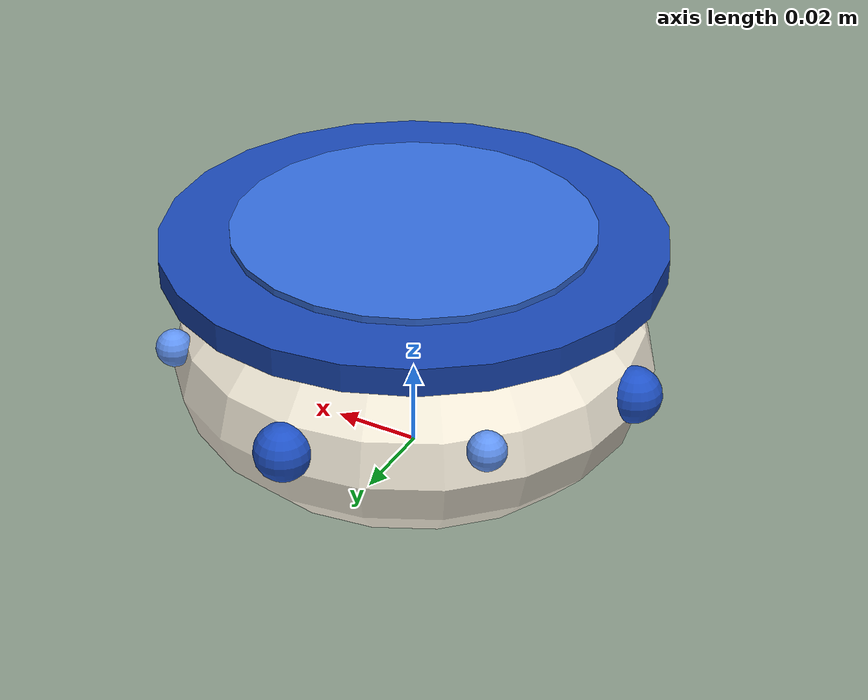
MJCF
<mujoco model="kitchen_bowl">
  <worldbody>
    <body>
      <body name="object">
        <geom name="bowl_body_collision" type="cylinder"
              pos="0 0 0.024" size="0.048 0.024"
              rgba="0 0 0 0" density="450"
              friction="1.2 0.02 0.0001" group="0"/>
        <geom name="bowl_rim_collision" type="cylinder"
              pos="0 0 0.046" size="0.053 0.006"
              rgba="0 0 0 0" density="450"
              friction="1.2 0.02 0.0001" group="0"/>

        <geom name="bowl_outer_visual" type="ellipsoid"
              pos="0 0 0.026" size="0.053 0.053 0.030"
              rgba="0.96 0.93 0.86 1"
              contype="0" conaffinity="0" group="1"/>
        <geom name="bowl_inner_visual" type="ellipsoid"
              pos="0 0 0.038" size="0.043 0.043 0.018"
              rgba="0.99 0.97 0.92 1"
              contype="0" conaffinity="0" group="1"/>
        <geom name="blue_rim_visual" type="cylinder"
              pos="0 0 0.052" size="0.054 0.003"
              rgba="0.10 0.28 0.70 1"
              contype="0" conaffinity="0" group="1"/>
        <geom name="inner_blue_ring_visual" type="cylinder"
              pos="0 0 0.055" size="0.039 0.0015"
              rgba="0.20 0.42 0.85 1"
              contype="0" conaffinity="0" group="1"/>

        <geom name="flower_dot_front" type="sphere"
              pos="0 -0.052 0.030" size="0.006"
              rgba="0.12 0.32 0.78 1"
              contype="0" conaffinity="0" group="1"/>
        <geom name="flower_dot_back" type="sphere"
              pos="0 0.052 0.030" size="0.006"
              rgba="0.12 0.32 0.78 1"
              contype="0" conaffinity="0" group="1"/>
        <geom name="flower_dot_left" type="sphere"
              pos="-0.052 0 0.030" size="0.006"
              rgba="0.12 0.32 0.78 1"
              contype="0" conaffinity="0" group="1"/>
        <geom name="flower_dot_right" type="sphere"
              pos="0.052 0 0.030" size="0.006"
              rgba="0.12 0.32 0.78 1"
              contype="0" conaffinity="0" group="1"/>
        <geom name="small_dot_front_left" type="sphere"
              pos="-0.037 -0.037 0.034" size="0.004"
              rgba="0.38 0.58 0.95 1"
              contype="0" conaffinity="0" group="1"/>
        <geom name="small_dot_front_right" type="sphere"
              pos="0.037 -0.037 0.034" size="0.004"
              rgba="0.38 0.58 0.95 1"
              contype="0" conaffinity="0" group="1"/>
        <geom name="small_dot_back_left" type="sphere"
              pos="-0.037 0.037 0.034" size="0.004"
              rgba="0.38 0.58 0.95 1"
              contype="0" conaffinity="0" group="1"/>
        <geom name="small_dot_back_right" type="sphere"
              pos="0.037 0.037 0.034" size="0.004"
              rgba="0.38 0.58 0.95 1"
              contype="0" conaffinity="0" group="1"/>
      </body>
      <site name="bottom_site" pos="0 0 -0.002" size="0.003" rgba="0 0 0 0"/>
      <site name="top_site" pos="0 0 0.058" size="0.003" rgba="0 0 0 0"/>
      <site name="horizontal_radius_site" pos="0.054 0 0.030"
            size="0.003" rgba="0 0 0 0"/>
    </body>
  </worldbody>
</mujoco>
